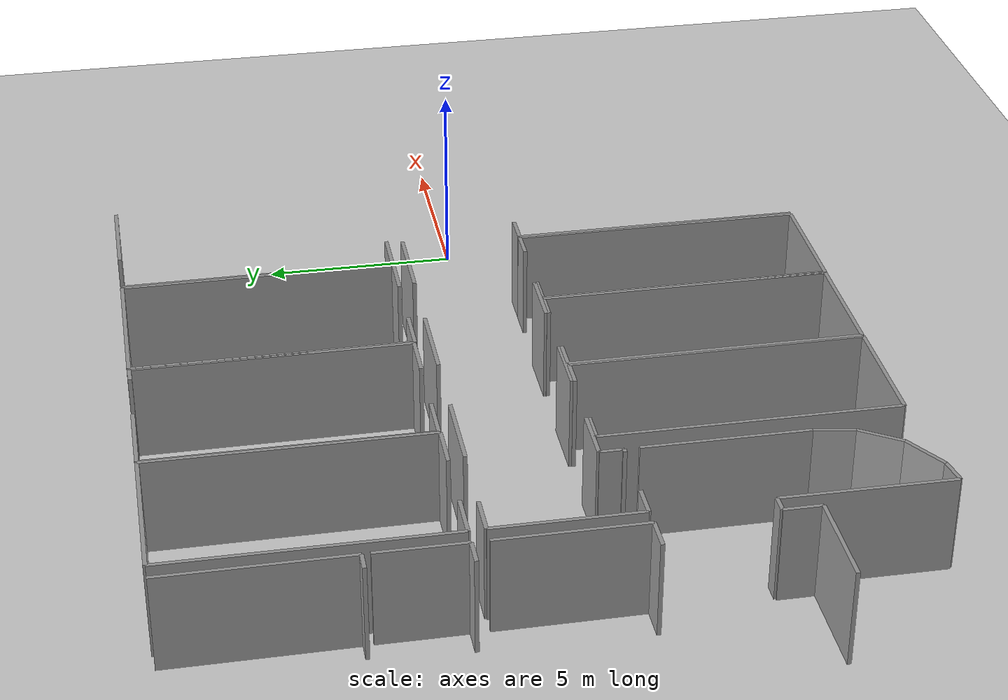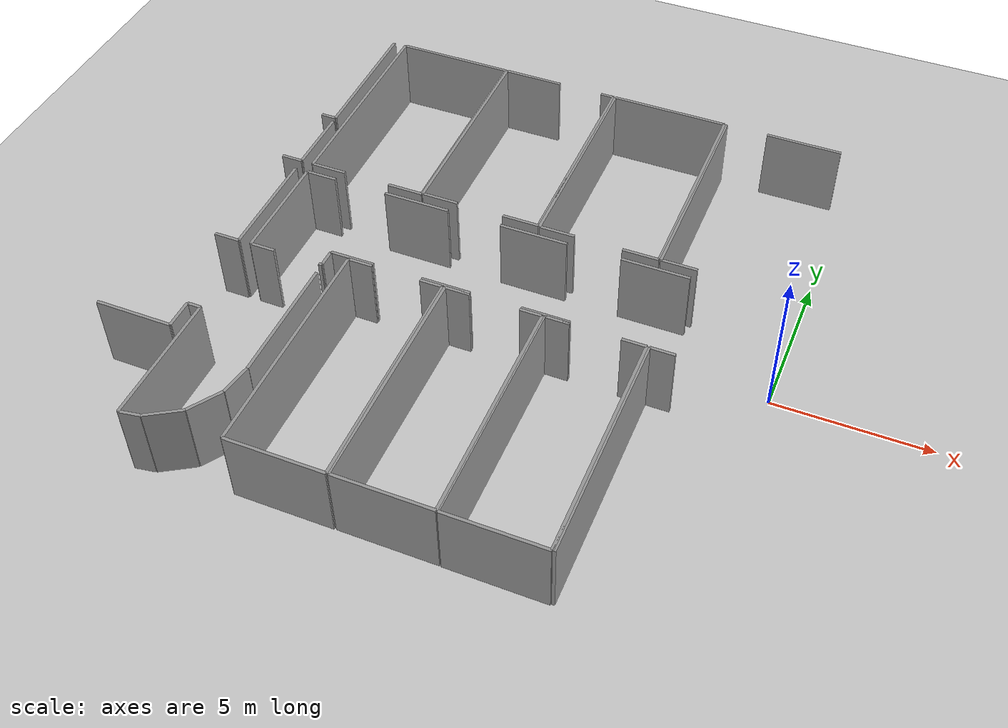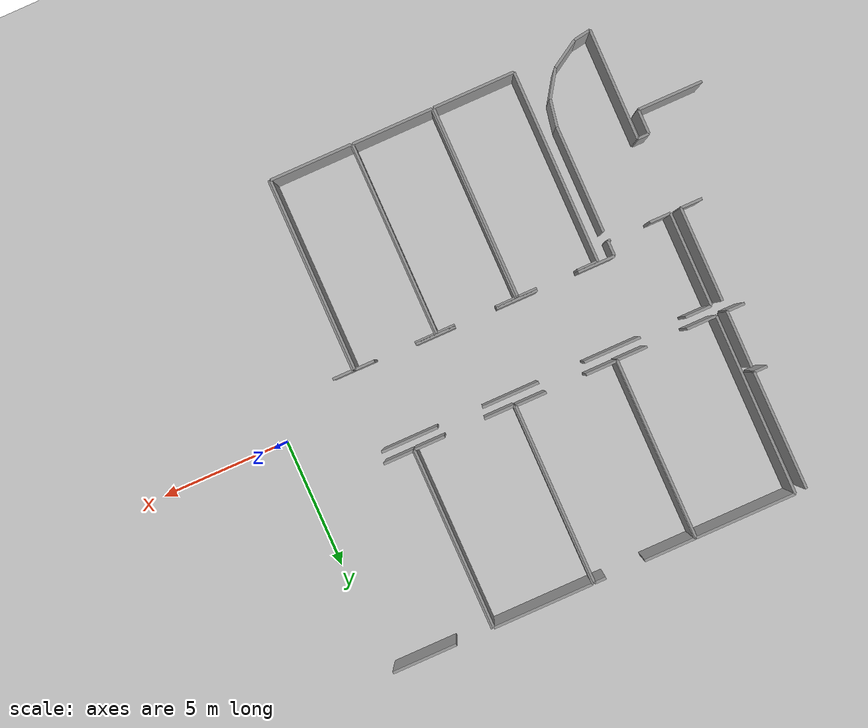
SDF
<sdf version="1.6">
 <world name="default">
  <model name="ground_plane">
   <static>1</static>
   <link name="link">
    <collision name="collision">
     <geometry><plane><normal>0 0 1</normal><size>100 100</size></plane></geometry>
     <surface><friction><ode><mu>100</mu><mu2>50</mu2></ode></friction></surface>
    </collision>
    <visual name="visual">
     <cast_shadows>0</cast_shadows>
     <geometry><plane><normal>0 0 1</normal><size>100 100</size></plane></geometry>
     <material>
      <script><uri>file://media/materials/scripts/gazebo.material</uri><name>Gazebo/Grey</name></script>
     </material>
    </visual>
   </link>
  </model>
  <model name="0510034839_A-40">
   <static>1</static>
   <link name="Wall_42">
    <collision name="Wall_42_Collision">
     <geometry><box><size>0.511336227689 0.1 2.5</size></box></geometry>
     <pose>0.255668113845 0 1.25 0 0 0</pose>
    </collision>
    <visual name="Wall_42_Visual">
     <pose>0.255668113845 0 1.25 0 0 0</pose>
     <geometry><box><size>0.511336227689 0.1 2.5</size></box></geometry>
     <material>
      <script><uri>file://media/materials/scripts/gazebo.material</uri><name>Gazebo/Grey</name></script>
      <ambient>1 1 1 1</ambient>
     </material>
    </visual>
    <pose>15.8651331658 -4.62436844644 0 0 0 3.14159265359</pose>
   </link>
   <link name="Wall_46">
    <collision name="Wall_46_Collision">
     <geometry><box><size>4.60104988891 0.1 2.5</size></box></geometry>
     <pose>2.30052494445 0 1.25 0 0 0</pose>
    </collision>
    <visual name="Wall_46_Visual">
     <pose>2.30052494445 0 1.25 0 0 0</pose>
     <geometry><box><size>4.60104988891 0.1 2.5</size></box></geometry>
     <material>
      <script><uri>file://media/materials/scripts/gazebo.material</uri><name>Gazebo/Grey</name></script>
      <ambient>1 1 1 1</ambient>
     </material>
    </visual>
    <pose>15.8460913499 -0.0233579607485 0 0 0 -1.56665773438</pose>
   </link>
   <link name="Wall_47">
    <collision name="Wall_47_Collision">
     <geometry><box><size>0.696676568411 0.1 2.5</size></box></geometry>
     <pose>0.348338284205 0 1.25 0 0 0</pose>
    </collision>
    <visual name="Wall_47_Visual">
     <pose>0.348338284205 0 1.25 0 0 0</pose>
     <geometry><box><size>0.696676568411 0.1 2.5</size></box></geometry>
     <material>
      <script><uri>file://media/materials/scripts/gazebo.material</uri><name>Gazebo/Grey</name></script>
      <ambient>1 1 1 1</ambient>
     </material>
    </visual>
    <pose>15.8713534923 -7.02059055018 0 0 0 3.14159265359</pose>
   </link>
   <link name="Wall_53">
    <collision name="Wall_53_Collision">
     <geometry><box><size>2.19907636483 0.1 2.5</size></box></geometry>
     <pose>1.09953818242 0 1.25 0 0 0</pose>
    </collision>
    <visual name="Wall_53_Visual">
     <pose>1.09953818242 0 1.25 0 0 0</pose>
     <geometry><box><size>2.19907636483 0.1 2.5</size></box></geometry>
     <material>
      <script><uri>file://media/materials/scripts/gazebo.material</uri><name>Gazebo/Grey</name></script>
      <ambient>1 1 1 1</ambient>
     </material>
    </visual>
    <pose>15.8728768375 -4.82151471298 0 0 0 -1.57148904734</pose>
   </link>
   <link name="Wall_54">
    <collision name="Wall_54_Collision">
     <geometry><box><size>0.83149262447 0.1 2.5</size></box></geometry>
     <pose>0.415746312235 0 1.25 0 0 0</pose>
    </collision>
    <visual name="Wall_54_Visual">
     <pose>0.415746312235 0 1.25 0 0 0</pose>
     <geometry><box><size>0.83149262447 0.1 2.5</size></box></geometry>
     <material>
      <script><uri>file://media/materials/scripts/gazebo.material</uri><name>Gazebo/Grey</name></script>
      <ambient>1 1 1 1</ambient>
     </material>
    </visual>
    <pose>15.8823977454 -11.0895727017 0 0 0 3.14159265359</pose>
   </link>
   <link name="Wall_61">
    <collision name="Wall_61_Collision">
     <geometry><box><size>3.66264152518 0.1 2.5</size></box></geometry>
     <pose>1.83132076259 0 1.25 0 0 0</pose>
    </collision>
    <visual name="Wall_61_Visual">
     <pose>1.83132076259 0 1.25 0 0 0</pose>
     <geometry><box><size>3.66264152518 0.1 2.5</size></box></geometry>
     <material>
      <script><uri>file://media/materials/scripts/gazebo.material</uri><name>Gazebo/Grey</name></script>
      <ambient>1 1 1 1</ambient>
     </material>
    </visual>
    <pose>15.8731307284 -7.42694289994 0 0 0 -1.56826617831</pose>
   </link>
   <link name="Wall_62">
    <collision name="Wall_62_Collision">
     <geometry><box><size>0.441516236322 0.1 2.5</size></box></geometry>
     <pose>0.220758118161 0 1.25 0 0 0</pose>
    </collision>
    <visual name="Wall_62_Visual">
     <pose>0.220758118161 0 1.25 0 0 0</pose>
     <geometry><box><size>0.441516236322 0.1 2.5</size></box></geometry>
     <material>
      <script><uri>file://media/materials/scripts/gazebo.material</uri><name>Gazebo/Grey</name></script>
      <ambient>1 1 1 1</ambient>
     </material>
    </visual>
    <pose>16.2909081677 -13.9971310331 0 0 0 3.14159265359</pose>
   </link>
   <link name="Wall_63">
    <collision name="Wall_63_Collision">
     <geometry><box><size>0.949297991723 0.1 2.5</size></box></geometry>
     <pose>0.474648995862 0 1.25 0 0 0</pose>
    </collision>
    <visual name="Wall_63_Visual">
     <pose>0.474648995862 0 1.25 0 0 0</pose>
     <geometry><box><size>0.949297991723 0.1 2.5</size></box></geometry>
     <material>
      <script><uri>file://media/materials/scripts/gazebo.material</uri><name>Gazebo/Grey</name></script>
      <ambient>1 1 1 1</ambient>
     </material>
    </visual>
    <pose>15.8493919313 -13.9971310331 0 0 0 -1.57079632679</pose>
   </link>
   <link name="Wall_64">
    <collision name="Wall_64_Collision">
     <geometry><box><size>2.50590296291 0.1 2.5</size></box></geometry>
     <pose>1.25295148145 0 1.25 0 0 0</pose>
    </collision>
    <visual name="Wall_64_Visual">
     <pose>1.25295148145 0 1.25 0 0 0</pose>
     <geometry><box><size>2.50590296291 0.1 2.5</size></box></geometry>
     <material>
      <script><uri>file://media/materials/scripts/gazebo.material</uri><name>Gazebo/Grey</name></script>
      <ambient>1 1 1 1</ambient>
     </material>
    </visual>
    <pose>15.8493919313 -14.9464290248 0 0 0 3.14159265359</pose>
   </link>
   <link name="Wall_70">
    <collision name="Wall_70_Collision">
     <geometry><box><size>4.13385127072 0.1 2.5</size></box></geometry>
     <pose>2.06692563536 0 1.25 0 0 0</pose>
    </collision>
    <visual name="Wall_70_Visual">
     <pose>2.06692563536 0 1.25 0 0 0</pose>
     <geometry><box><size>4.13385127072 0.1 2.5</size></box></geometry>
     <material>
      <script><uri>file://media/materials/scripts/gazebo.material</uri><name>Gazebo/Grey</name></script>
      <ambient>1 1 1 1</ambient>
     </material>
    </visual>
    <pose>18.780435169 -11.4351181862 0 0 0 -1.57079632679</pose>
   </link>
   <link name="Wall_71">
    <collision name="Wall_71_Collision">
     <geometry><box><size>1.01828139375 0.1 2.5</size></box></geometry>
     <pose>0.509140696876 0 1.25 0 0 0</pose>
    </collision>
    <visual name="Wall_71_Visual">
     <pose>0.509140696876 0 1.25 0 0 0</pose>
     <geometry><box><size>1.01828139375 0.1 2.5</size></box></geometry>
     <material>
      <script><uri>file://media/materials/scripts/gazebo.material</uri><name>Gazebo/Grey</name></script>
      <ambient>1 1 1 1</ambient>
     </material>
    </visual>
    <pose>18.780435169 -15.5689694569 0 0 0 -1.75205478987</pose>
   </link>
   <link name="Wall_72">
    <collision name="Wall_72_Collision">
     <geometry><box><size>1.15751088469 0.1 2.5</size></box></geometry>
     <pose>0.578755442347 0 1.25 0 0 0</pose>
    </collision>
    <visual name="Wall_72_Visual">
     <pose>0.578755442347 0 1.25 0 0 0</pose>
     <geometry><box><size>1.15751088469 0.1 2.5</size></box></geometry>
     <material>
      <script><uri>file://media/materials/scripts/gazebo.material</uri><name>Gazebo/Grey</name></script>
      <ambient>1 1 1 1</ambient>
     </material>
    </visual>
    <pose>18.5968720644 -16.5705689695 0 0 0 -2.150799101</pose>
   </link>
   <link name="Wall_73">
    <collision name="Wall_73_Collision">
     <geometry><box><size>1.2025057377 0.1 2.5</size></box></geometry>
     <pose>0.601252868848 0 1.25 0 0 0</pose>
    </collision>
    <visual name="Wall_73_Visual">
     <pose>0.601252868848 0 1.25 0 0 0</pose>
     <geometry><box><size>1.2025057377 0.1 2.5</size></box></geometry>
     <material>
      <script><uri>file://media/materials/scripts/gazebo.material</uri><name>Gazebo/Grey</name></script>
      <ambient>1 1 1 1</ambient>
     </material>
    </visual>
    <pose>17.9625257065 -17.5387818316 0 0 0 -2.59409417031</pose>
   </link>
   <link name="Wall_74">
    <collision name="Wall_74_Collision">
     <geometry><box><size>0.668228310078 0.1 2.5</size></box></geometry>
     <pose>0.334114155039 0 1.25 0 0 0</pose>
    </collision>
    <visual name="Wall_74_Visual">
     <pose>0.334114155039 0 1.25 0 0 0</pose>
     <geometry><box><size>0.668228310078 0.1 2.5</size></box></geometry>
     <material>
      <script><uri>file://media/materials/scripts/gazebo.material</uri><name>Gazebo/Grey</name></script>
      <ambient>1 1 1 1</ambient>
     </material>
    </visual>
    <pose>16.935790997 -18.1647497905 0 0 0 -2.97844278672</pose>
   </link>
   <link name="Wall_75">
    <collision name="Wall_75_Collision">
     <geometry><box><size>4.276181596 0.1 2.5</size></box></geometry>
     <pose>2.138090798 0 1.25 0 0 0</pose>
    </collision>
    <visual name="Wall_75_Visual">
     <pose>2.138090798 0 1.25 0 0 0</pose>
     <geometry><box><size>4.276181596 0.1 2.5</size></box></geometry>
     <material>
      <script><uri>file://media/materials/scripts/gazebo.material</uri><name>Gazebo/Grey</name></script>
      <ambient>1 1 1 1</ambient>
     </material>
    </visual>
    <pose>16.2764363876 -18.2732881408 0 0 0 1.56741204403</pose>
   </link>
   <link name="Wall_85">
    <collision name="Wall_85_Collision">
     <geometry><box><size>1.56054027979 0.1 2.5</size></box></geometry>
     <pose>0.780270139894 0 1.25 0 0 0</pose>
    </collision>
    <visual name="Wall_85_Visual">
     <pose>0.780270139894 0 1.25 0 0 0</pose>
     <geometry><box><size>1.56054027979 0.1 2.5</size></box></geometry>
     <material>
      <script><uri>file://media/materials/scripts/gazebo.material</uri><name>Gazebo/Grey</name></script>
      <ambient>1 1 1 1</ambient>
     </material>
    </visual>
    <pose>26.6011628202 -10.4773148501 0 0 0 3.14159265359</pose>
   </link>
   <link name="Wall_86">
    <collision name="Wall_86_Collision">
     <geometry><box><size>1.60408256531 0.1 2.5</size></box></geometry>
     <pose>0.802041282657 0 1.25 0 0 0</pose>
    </collision>
    <visual name="Wall_86_Visual">
     <pose>0.802041282657 0 1.25 0 0 0</pose>
     <geometry><box><size>1.60408256531 0.1 2.5</size></box></geometry>
     <material>
      <script><uri>file://media/materials/scripts/gazebo.material</uri><name>Gazebo/Grey</name></script>
      <ambient>1 1 1 1</ambient>
     </material>
    </visual>
    <pose>23.4148323051 -10.4773148501 0 0 0 3.14159265359</pose>
   </link>
   <link name="Wall_87">
    <collision name="Wall_87_Collision">
     <geometry><box><size>1.43892654937 0.1 2.5</size></box></geometry>
     <pose>0.719463274685 0 1.25 0 0 0</pose>
    </collision>
    <visual name="Wall_87_Visual">
     <pose>0.719463274685 0 1.25 0 0 0</pose>
     <geometry><box><size>1.43892654937 0.1 2.5</size></box></geometry>
     <material>
      <script><uri>file://media/materials/scripts/gazebo.material</uri><name>Gazebo/Grey</name></script>
      <ambient>1 1 1 1</ambient>
     </material>
    </visual>
    <pose>20.2073019016 -10.4773148501 0 0 0 3.14159265359</pose>
   </link>
   <link name="Wall_88">
    <collision name="Wall_88_Collision">
     <geometry><box><size>0.593850762942 0.1 2.5</size></box></geometry>
     <pose>0.296925381471 0 1.25 0 0 0</pose>
    </collision>
    <visual name="Wall_88_Visual">
     <pose>0.296925381471 0 1.25 0 0 0</pose>
     <geometry><box><size>0.593850762942 0.1 2.5</size></box></geometry>
     <material>
      <script><uri>file://media/materials/scripts/gazebo.material</uri><name>Gazebo/Grey</name></script>
      <ambient>1 1 1 1</ambient>
     </material>
    </visual>
    <pose>18.7683753523 -10.4773148501 0 0 0 -1.57079632679</pose>
   </link>
   <link name="Wall_89">
    <collision name="Wall_89_Collision">
     <geometry><box><size>0.105110823368 0.1 2.5</size></box></geometry>
     <pose>0.0525554116841 0 1.25 0 0 0</pose>
    </collision>
    <visual name="Wall_89_Visual">
     <pose>0.0525554116841 0 1.25 0 0 0</pose>
     <geometry><box><size>0.105110823368 0.1 2.5</size></box></geometry>
     <material>
      <script><uri>file://media/materials/scripts/gazebo.material</uri><name>Gazebo/Grey</name></script>
      <ambient>1 1 1 1</ambient>
     </material>
    </visual>
    <pose>18.7683753523 -11.071165613 0 0 0 3.14159265359</pose>
   </link>
   <link name="Wall_90">
    <collision name="Wall_90_Collision">
     <geometry><box><size>0.816132226369 0.1 2.5</size></box></geometry>
     <pose>0.408066113185 0 1.25 0 0 0</pose>
    </collision>
    <visual name="Wall_90_Visual">
     <pose>0.408066113185 0 1.25 0 0 0</pose>
     <geometry><box><size>0.816132226369 0.1 2.5</size></box></geometry>
     <material>
      <script><uri>file://media/materials/scripts/gazebo.material</uri><name>Gazebo/Grey</name></script>
      <ambient>1 1 1 1</ambient>
     </material>
    </visual>
    <pose>17.1187193744 -11.071165613 0 0 0 3.14159265359</pose>
   </link>
   <link name="Wall_91">
    <collision name="Wall_91_Collision">
     <geometry><box><size>3.64447660396 0.1 2.5</size></box></geometry>
     <pose>1.82223830198 0 1.25 0 0 0</pose>
    </collision>
    <visual name="Wall_91_Visual">
     <pose>1.82223830198 0 1.25 0 0 0</pose>
     <geometry><box><size>3.64447660396 0.1 2.5</size></box></geometry>
     <material>
      <script><uri>file://media/materials/scripts/gazebo.material</uri><name>Gazebo/Grey</name></script>
      <ambient>1 1 1 1</ambient>
     </material>
    </visual>
    <pose>16.302587148 -11.071165613 0 0 0 1.57079632679</pose>
   </link>
   <link name="Wall_92">
    <collision name="Wall_92_Collision">
     <geometry><box><size>1.02673470942 0.1 2.5</size></box></geometry>
     <pose>0.513367354711 0 1.25 0 0 0</pose>
    </collision>
    <visual name="Wall_92_Visual">
     <pose>0.513367354711 0 1.25 0 0 0</pose>
     <geometry><box><size>1.02673470942 0.1 2.5</size></box></geometry>
     <material>
      <script><uri>file://media/materials/scripts/gazebo.material</uri><name>Gazebo/Grey</name></script>
      <ambient>1 1 1 1</ambient>
     </material>
    </visual>
    <pose>16.302587148 -7.42668900906 0 0 0 0.0</pose>
   </link>
   <link name="Wall_93">
    <collision name="Wall_93_Collision">
     <geometry><box><size>2.20415365476 0.1 2.5</size></box></geometry>
     <pose>1.10207682738 0 1.25 0 0 0</pose>
    </collision>
    <visual name="Wall_93_Visual">
     <pose>1.10207682738 0 1.25 0 0 0</pose>
     <geometry><box><size>2.20415365476 0.1 2.5</size></box></geometry>
     <material>
      <script><uri>file://media/materials/scripts/gazebo.material</uri><name>Gazebo/Grey</name></script>
      <ambient>1 1 1 1</ambient>
     </material>
    </visual>
    <pose>19.1077005103 -7.42668900906 0 0 0 0.0</pose>
   </link>
   <link name="Wall_94">
    <collision name="Wall_94_Collision">
     <geometry><box><size>2.22027572549 0.1 2.5</size></box></geometry>
     <pose>1.11013786275 0 1.25 0 0 0</pose>
    </collision>
    <visual name="Wall_94_Visual">
     <pose>1.11013786275 0 1.25 0 0 0</pose>
     <geometry><box><size>2.22027572549 0.1 2.5</size></box></geometry>
     <material>
      <script><uri>file://media/materials/scripts/gazebo.material</uri><name>Gazebo/Grey</name></script>
      <ambient>1 1 1 1</ambient>
     </material>
    </visual>
    <pose>23.1041968162 -7.42668900906 0 0 0 0.0</pose>
   </link>
   <link name="Wall_95">
    <collision name="Wall_95_Collision">
     <geometry><box><size>2.20351892756 0.1 2.5</size></box></geometry>
     <pose>1.10175946378 0 1.25 0 0 0</pose>
    </collision>
    <visual name="Wall_95_Visual">
     <pose>1.10175946378 0 1.25 0 0 0</pose>
     <geometry><box><size>2.20351892756 0.1 2.5</size></box></geometry>
     <material>
      <script><uri>file://media/materials/scripts/gazebo.material</uri><name>Gazebo/Grey</name></script>
      <ambient>1 1 1 1</ambient>
     </material>
    </visual>
    <pose>27.0939650138 -7.42668900906 0 0 0 0.0</pose>
   </link>
   <link name="Wall_102">
    <collision name="Wall_102_Collision">
     <geometry><box><size>1.18071952675 0.1 2.5</size></box></geometry>
     <pose>0.590359763374 0 1.25 0 0 0</pose>
    </collision>
    <visual name="Wall_102_Visual">
     <pose>0.590359763374 0 1.25 0 0 0</pose>
     <geometry><box><size>1.18071952675 0.1 2.5</size></box></geometry>
     <material>
      <script><uri>file://media/materials/scripts/gazebo.material</uri><name>Gazebo/Grey</name></script>
      <ambient>1 1 1 1</ambient>
     </material>
    </visual>
    <pose>20.2019701932 -7.01970193211 0 0 0 3.14159265359</pose>
   </link>
   <link name="Wall_103">
    <collision name="Wall_103_Collision">
     <geometry><box><size>1.17107167339 0.1 2.5</size></box></geometry>
     <pose>0.585535836697 0 1.25 0 0 0</pose>
    </collision>
    <visual name="Wall_103_Visual">
     <pose>0.585535836697 0 1.25 0 0 0</pose>
     <geometry><box><size>1.17107167339 0.1 2.5</size></box></geometry>
     <material>
      <script><uri>file://media/materials/scripts/gazebo.material</uri><name>Gazebo/Grey</name></script>
      <ambient>1 1 1 1</ambient>
     </material>
    </visual>
    <pose>17.4566481326 -7.01970193211 0 0 0 3.14159265359</pose>
   </link>
   <link name="Wall_104">
    <collision name="Wall_104_Collision">
     <geometry><box><size>7.0010409526 0.1 2.5</size></box></geometry>
     <pose>3.5005204763 0 1.25 0 0 0</pose>
    </collision>
    <visual name="Wall_104_Visual">
     <pose>3.5005204763 0 1.25 0 0 0</pose>
     <geometry><box><size>7.0010409526 0.1 2.5</size></box></geometry>
     <material>
      <script><uri>file://media/materials/scripts/gazebo.material</uri><name>Gazebo/Grey</name></script>
      <ambient>1 1 1 1</ambient>
     </material>
    </visual>
    <pose>16.2855764592 -7.01970193211 0 0 0 1.57079632679</pose>
   </link>
   <link name="Wall_105">
    <collision name="Wall_105_Collision">
     <geometry><box><size>3.90915784396 0.1 2.5</size></box></geometry>
     <pose>1.95457892198 0 1.25 0 0 0</pose>
    </collision>
    <visual name="Wall_105_Visual">
     <pose>1.95457892198 0 1.25 0 0 0</pose>
     <geometry><box><size>3.90915784396 0.1 2.5</size></box></geometry>
     <material>
      <script><uri>file://media/materials/scripts/gazebo.material</uri><name>Gazebo/Grey</name></script>
      <ambient>1 1 1 1</ambient>
     </material>
    </visual>
    <pose>16.2855764592 -0.018660979511 0 0 0 0.0</pose>
   </link>
   <link name="Wall_106">
    <collision name="Wall_106_Collision">
     <geometry><box><size>7.00104469191 0.1 2.5</size></box></geometry>
     <pose>3.50052234595 0 1.25 0 0 0</pose>
    </collision>
    <visual name="Wall_106_Visual">
     <pose>3.50052234595 0 1.25 0 0 0</pose>
     <geometry><box><size>7.00104469191 0.1 2.5</size></box></geometry>
     <material>
      <script><uri>file://media/materials/scripts/gazebo.material</uri><name>Gazebo/Grey</name></script>
      <ambient>1 1 1 1</ambient>
     </material>
    </visual>
    <pose>20.1947343032 -0.018660979511 0 0 0 -1.56976278229</pose>
   </link>
   <link name="Wall_107">
    <collision name="Wall_107_Collision">
     <geometry><box><size>1.20141163328 0.1 2.5</size></box></geometry>
     <pose>0.60070581664 0 1.25 0 0 0</pose>
    </collision>
    <visual name="Wall_107_Visual">
     <pose>0.60070581664 0 1.25 0 0 0</pose>
     <geometry><box><size>1.20141163328 0.1 2.5</size></box></geometry>
     <material>
      <script><uri>file://media/materials/scripts/gazebo.material</uri><name>Gazebo/Grey</name></script>
      <ambient>1 1 1 1</ambient>
     </material>
    </visual>
    <pose>24.2046868256 -6.99088531749 0 0 0 3.14159265359</pose>
   </link>
   <link name="Wall_108">
    <collision name="Wall_108_Collision">
     <geometry><box><size>1.20191941504 0.1 2.5</size></box></geometry>
     <pose>0.600959707518 0 1.25 0 0 0</pose>
    </collision>
    <visual name="Wall_108_Visual">
     <pose>0.600959707518 0 1.25 0 0 0</pose>
     <geometry><box><size>1.20191941504 0.1 2.5</size></box></geometry>
     <material>
      <script><uri>file://media/materials/scripts/gazebo.material</uri><name>Gazebo/Grey</name></script>
      <ambient>1 1 1 1</ambient>
     </material>
    </visual>
    <pose>21.4347373499 -6.99088531749 0 0 0 3.14159265359</pose>
   </link>
   <link name="Wall_109">
    <collision name="Wall_109_Collision">
     <geometry><box><size>6.97374768325 0.1 2.5</size></box></geometry>
     <pose>3.48687384162 0 1.25 0 0 0</pose>
    </collision>
    <visual name="Wall_109_Visual">
     <pose>3.48687384162 0 1.25 0 0 0</pose>
     <geometry><box><size>6.97374768325 0.1 2.5</size></box></geometry>
     <material>
      <script><uri>file://media/materials/scripts/gazebo.material</uri><name>Gazebo/Grey</name></script>
      <ambient>1 1 1 1</ambient>
     </material>
    </visual>
    <pose>20.2328179349 -6.99088531749 0 0 0 1.57079632679</pose>
   </link>
   <link name="Wall_110">
    <collision name="Wall_110_Collision">
     <geometry><box><size>1.98783862696 0.1 2.5</size></box></geometry>
     <pose>0.993919313479 0 1.25 0 0 0</pose>
    </collision>
    <visual name="Wall_110_Visual">
     <pose>0.993919313479 0 1.25 0 0 0</pose>
     <geometry><box><size>1.98783862696 0.1 2.5</size></box></geometry>
     <material>
      <script><uri>file://media/materials/scripts/gazebo.material</uri><name>Gazebo/Grey</name></script>
      <ambient>1 1 1 1</ambient>
     </material>
    </visual>
    <pose>20.2328179349 -0.0171376342448 0 0 0 0.0</pose>
   </link>
   <link name="Wall_111">
    <collision name="Wall_111_Collision">
     <geometry><box><size>0.448117399142 0.1 2.5</size></box></geometry>
     <pose>0.224058699571 0 1.25 0 0 0</pose>
    </collision>
    <visual name="Wall_111_Visual">
     <pose>0.224058699571 0 1.25 0 0 0</pose>
     <geometry><box><size>0.448117399142 0.1 2.5</size></box></geometry>
     <material>
      <script><uri>file://media/materials/scripts/gazebo.material</uri><name>Gazebo/Grey</name></script>
      <ambient>1 1 1 1</ambient>
     </material>
    </visual>
    <pose>23.7480640821 -0.0171376342448 0 0 0 0.0</pose>
   </link>
   <link name="Wall_112">
    <collision name="Wall_112_Collision">
     <geometry><box><size>6.9737528699 0.1 2.5</size></box></geometry>
     <pose>3.48687643495 0 1.25 0 0 0</pose>
    </collision>
    <visual name="Wall_112_Visual">
     <pose>3.48687643495 0 1.25 0 0 0</pose>
     <geometry><box><size>6.9737528699 0.1 2.5</size></box></geometry>
     <material>
      <script><uri>file://media/materials/scripts/gazebo.material</uri><name>Gazebo/Grey</name></script>
      <ambient>1 1 1 1</ambient>
     </material>
    </visual>
    <pose>24.1961814812 -0.0171376342448 0 0 0 -1.56957670421</pose>
   </link>
   <link name="Wall_113">
    <collision name="Wall_113_Collision">
     <geometry><box><size>1.18833625308 0.1 2.5</size></box></geometry>
     <pose>0.594168126539 0 1.25 0 0 0</pose>
    </collision>
    <visual name="Wall_113_Visual">
     <pose>0.594168126539 0 1.25 0 0 0</pose>
     <geometry><box><size>1.18833625308 0.1 2.5</size></box></geometry>
     <material>
      <script><uri>file://media/materials/scripts/gazebo.material</uri><name>Gazebo/Grey</name></script>
      <ambient>1 1 1 1</ambient>
     </material>
    </visual>
    <pose>28.1790946251 -7.02173305913 0 0 0 3.14159265359</pose>
   </link>
   <link name="Wall_114">
    <collision name="Wall_114_Collision">
     <geometry><box><size>1.16853276462 0.1 2.5</size></box></geometry>
     <pose>0.584266382309 0 1.25 0 0 0</pose>
    </collision>
    <visual name="Wall_114_Visual">
     <pose>0.584266382309 0 1.25 0 0 0</pose>
     <geometry><box><size>1.16853276462 0.1 2.5</size></box></geometry>
     <material>
      <script><uri>file://media/materials/scripts/gazebo.material</uri><name>Gazebo/Grey</name></script>
      <ambient>1 1 1 1</ambient>
     </material>
    </visual>
    <pose>25.4252672201 -7.02173305913 0 0 0 3.14159265359</pose>
   </link>
   <link name="Wall_115">
    <collision name="Wall_115_Collision">
     <geometry><box><size>7.01132353315 0.1 2.5</size></box></geometry>
     <pose>3.50566176657 0 1.25 0 0 0</pose>
    </collision>
    <visual name="Wall_115_Visual">
     <pose>3.50566176657 0 1.25 0 0 0</pose>
     <geometry><box><size>7.01132353315 0.1 2.5</size></box></geometry>
     <material>
      <script><uri>file://media/materials/scripts/gazebo.material</uri><name>Gazebo/Grey</name></script>
      <ambient>1 1 1 1</ambient>
     </material>
    </visual>
    <pose>24.2567344555 -7.02173305913 0 0 0 1.57079632679</pose>
   </link>
   <link name="Wall_116">
    <collision name="Wall_116_Collision">
     <geometry><box><size>3.90306446289 0.1 2.5</size></box></geometry>
     <pose>1.95153223145 0 1.25 0 0 0</pose>
    </collision>
    <visual name="Wall_116_Visual">
     <pose>1.95153223145 0 1.25 0 0 0</pose>
     <geometry><box><size>3.90306446289 0.1 2.5</size></box></geometry>
     <material>
      <script><uri>file://media/materials/scripts/gazebo.material</uri><name>Gazebo/Grey</name></script>
      <ambient>1 1 1 1</ambient>
     </material>
    </visual>
    <pose>24.2567344555 -0.0104095259857 0 0 0 0.0</pose>
   </link>
   <link name="Wall_117">
    <collision name="Wall_117_Collision">
     <geometry><box><size>7.01135008474 0.1 2.5</size></box></geometry>
     <pose>3.50567504237 0 1.25 0 0 0</pose>
    </collision>
    <visual name="Wall_117_Visual">
     <pose>3.50567504237 0 1.25 0 0 0</pose>
     <geometry><box><size>7.01135008474 0.1 2.5</size></box></geometry>
     <material>
      <script><uri>file://media/materials/scripts/gazebo.material</uri><name>Gazebo/Grey</name></script>
      <ambient>1 1 1 1</ambient>
     </material>
    </visual>
    <pose>28.1597989184 -0.0104095259857 0 0 0 -1.56804425611</pose>
   </link>
   <link name="Wall_119">
    <collision name="Wall_119_Collision">
     <geometry><box><size>1.16853276462 0.1 2.5</size></box></geometry>
     <pose>0.584266382309 0 1.25 0 0 0</pose>
    </collision>
    <visual name="Wall_119_Visual">
     <pose>0.584266382309 0 1.25 0 0 0</pose>
     <geometry><box><size>1.16853276462 0.1 2.5</size></box></geometry>
     <material>
      <script><uri>file://media/materials/scripts/gazebo.material</uri><name>Gazebo/Grey</name></script>
      <ambient>1 1 1 1</ambient>
     </material>
    </visual>
    <pose>29.3954858202 -7.009546297 0 0 0 3.14159265359</pose>
   </link>
   <link name="Wall_120">
    <collision name="Wall_120_Collision">
     <geometry><box><size>7.00357986138 0.1 2.5</size></box></geometry>
     <pose>3.50178993069 0 1.25 0 0 0</pose>
    </collision>
    <visual name="Wall_120_Visual">
     <pose>3.50178993069 0 1.25 0 0 0</pose>
     <geometry><box><size>7.00357986138 0.1 2.5</size></box></geometry>
     <material>
      <script><uri>file://media/materials/scripts/gazebo.material</uri><name>Gazebo/Grey</name></script>
      <ambient>1 1 1 1</ambient>
     </material>
    </visual>
    <pose>28.2269530556 -7.009546297 0 0 0 1.57079632679</pose>
   </link>
   <link name="Wall_121">
    <collision name="Wall_121_Collision">
     <geometry><box><size>2.50069819991 0.1 2.5</size></box></geometry>
     <pose>1.25034909996 0 1.25 0 0 0</pose>
    </collision>
    <visual name="Wall_121_Visual">
     <pose>1.25034909996 0 1.25 0 0 0</pose>
     <geometry><box><size>2.50069819991 0.1 2.5</size></box></geometry>
     <material>
      <script><uri>file://media/materials/scripts/gazebo.material</uri><name>Gazebo/Grey</name></script>
      <ambient>1 1 1 1</ambient>
     </material>
    </visual>
    <pose>29.6413791352 -0.00596643562597 0 0 0 0.0</pose>
   </link>
   <link name="Wall_144">
    <collision name="Wall_144_Collision">
     <geometry><box><size>3.16766953563 0.1 2.5</size></box></geometry>
     <pose>1.58383476782 0 1.25 0 0 0</pose>
    </collision>
    <visual name="Wall_144_Visual">
     <pose>1.58383476782 0 1.25 0 0 0</pose>
     <geometry><box><size>3.16766953563 0.1 2.5</size></box></geometry>
     <material>
      <script><uri>file://media/materials/scripts/gazebo.material</uri><name>Gazebo/Grey</name></script>
      <ambient>1 1 1 1</ambient>
     </material>
    </visual>
    <pose>22.5632823013 -18.0007362835 0 0 0 3.14159265359</pose>
   </link>
   <link name="Wall_145">
    <collision name="Wall_145_Collision">
     <geometry><box><size>7.44992002437 0.1 2.5</size></box></geometry>
     <pose>3.72496001219 0 1.25 0 0 0</pose>
    </collision>
    <visual name="Wall_145_Visual">
     <pose>3.72496001219 0 1.25 0 0 0</pose>
     <geometry><box><size>7.44992002437 0.1 2.5</size></box></geometry>
     <material>
      <script><uri>file://media/materials/scripts/gazebo.material</uri><name>Gazebo/Grey</name></script>
      <ambient>1 1 1 1</ambient>
     </material>
    </visual>
    <pose>19.3956127656 -18.0007362835 0 0 0 1.57079632679</pose>
   </link>
   <link name="Wall_146">
    <collision name="Wall_146_Collision">
     <geometry><box><size>0.805468809506 0.1 2.5</size></box></geometry>
     <pose>0.402734404753 0 1.25 0 0 0</pose>
    </collision>
    <visual name="Wall_146_Visual">
     <pose>0.402734404753 0 1.25 0 0 0</pose>
     <geometry><box><size>0.805468809506 0.1 2.5</size></box></geometry>
     <material>
      <script><uri>file://media/materials/scripts/gazebo.material</uri><name>Gazebo/Grey</name></script>
      <ambient>1 1 1 1</ambient>
     </material>
    </visual>
    <pose>19.3956127656 -10.5508162592 0 0 0 0.0</pose>
   </link>
   <link name="Wall_147">
    <collision name="Wall_147_Collision">
     <geometry><box><size>0.74643918044 0.1 2.5</size></box></geometry>
     <pose>0.37321959022 0 1.25 0 0 0</pose>
    </collision>
    <visual name="Wall_147_Visual">
     <pose>0.37321959022 0 1.25 0 0 0</pose>
     <geometry><box><size>0.74643918044 0.1 2.5</size></box></geometry>
     <material>
      <script><uri>file://media/materials/scripts/gazebo.material</uri><name>Gazebo/Grey</name></script>
      <ambient>1 1 1 1</ambient>
     </material>
    </visual>
    <pose>21.8044024678 -10.5508162592 0 0 0 0.0</pose>
   </link>
   <link name="Wall_148">
    <collision name="Wall_148_Collision">
     <geometry><box><size>7.44993041172 0.1 2.5</size></box></geometry>
     <pose>3.72496520586 0 1.25 0 0 0</pose>
    </collision>
    <visual name="Wall_148_Visual">
     <pose>3.72496520586 0 1.25 0 0 0</pose>
     <geometry><box><size>7.44993041172 0.1 2.5</size></box></geometry>
     <material>
      <script><uri>file://media/materials/scripts/gazebo.material</uri><name>Gazebo/Grey</name></script>
      <ambient>1 1 1 1</ambient>
     </material>
    </visual>
    <pose>22.5508416483 -10.5508162592 0 0 0 -1.56912642411</pose>
   </link>
   <link name="Wall_149">
    <collision name="Wall_149_Collision">
     <geometry><box><size>3.13542539417 0.1 2.5</size></box></geometry>
     <pose>1.56771269708 0 1.25 0 0 0</pose>
    </collision>
    <visual name="Wall_149_Visual">
     <pose>1.56771269708 0 1.25 0 0 0</pose>
     <geometry><box><size>3.13542539417 0.1 2.5</size></box></geometry>
     <material>
      <script><uri>file://media/materials/scripts/gazebo.material</uri><name>Gazebo/Grey</name></script>
      <ambient>1 1 1 1</ambient>
     </material>
    </visual>
    <pose>25.7591337243 -17.9895650849 0 0 0 3.14159265359</pose>
   </link>
   <link name="Wall_150">
    <collision name="Wall_150_Collision">
     <geometry><box><size>7.44496915226 0.1 2.5</size></box></geometry>
     <pose>3.72248457613 0 1.25 0 0 0</pose>
    </collision>
    <visual name="Wall_150_Visual">
     <pose>3.72248457613 0 1.25 0 0 0</pose>
     <geometry><box><size>7.44496915226 0.1 2.5</size></box></geometry>
     <material>
      <script><uri>file://media/materials/scripts/gazebo.material</uri><name>Gazebo/Grey</name></script>
      <ambient>1 1 1 1</ambient>
     </material>
    </visual>
    <pose>22.6237083302 -17.9895650849 0 0 0 1.57079632679</pose>
   </link>
   <link name="Wall_151">
    <collision name="Wall_151_Collision">
     <geometry><box><size>0.79620179247 0.1 2.5</size></box></geometry>
     <pose>0.398100896235 0 1.25 0 0 0</pose>
    </collision>
    <visual name="Wall_151_Visual">
     <pose>0.398100896235 0 1.25 0 0 0</pose>
     <geometry><box><size>0.79620179247 0.1 2.5</size></box></geometry>
     <material>
      <script><uri>file://media/materials/scripts/gazebo.material</uri><name>Gazebo/Grey</name></script>
      <ambient>1 1 1 1</ambient>
     </material>
    </visual>
    <pose>22.6237083302 -10.5445959327 0 0 0 0.0</pose>
   </link>
   <link name="Wall_152">
    <collision name="Wall_152_Collision">
     <geometry><box><size>0.717876456699 0.1 2.5</size></box></geometry>
     <pose>0.358938228349 0 1.25 0 0 0</pose>
    </collision>
    <visual name="Wall_152_Visual">
     <pose>0.358938228349 0 1.25 0 0 0</pose>
     <geometry><box><size>0.717876456699 0.1 2.5</size></box></geometry>
     <material>
      <script><uri>file://media/materials/scripts/gazebo.material</uri><name>Gazebo/Grey</name></script>
      <ambient>1 1 1 1</ambient>
     </material>
    </visual>
    <pose>25.0322441415 -10.5445959327 0 0 0 0.0</pose>
   </link>
   <link name="Wall_153">
    <collision name="Wall_153_Collision">
     <geometry><box><size>7.44497460805 0.1 2.5</size></box></geometry>
     <pose>3.72248730403 0 1.25 0 0 0</pose>
    </collision>
    <visual name="Wall_153_Visual">
     <pose>3.72248730403 0 1.25 0 0 0</pose>
     <geometry><box><size>7.44497460805 0.1 2.5</size></box></geometry>
     <material>
      <script><uri>file://media/materials/scripts/gazebo.material</uri><name>Gazebo/Grey</name></script>
      <ambient>1 1 1 1</ambient>
     </material>
    </visual>
    <pose>25.7501205982 -10.5445959327 0 0 0 -1.56958569428</pose>
   </link>
   <link name="Wall_154">
    <collision name="Wall_154_Collision">
     <geometry><box><size>3.17503237109 0.1 2.5</size></box></geometry>
     <pose>1.58751618554 0 1.25 0 0 0</pose>
    </collision>
    <visual name="Wall_154_Visual">
     <pose>1.58751618554 0 1.25 0 0 0</pose>
     <geometry><box><size>3.17503237109 0.1 2.5</size></box></geometry>
     <material>
      <script><uri>file://media/materials/scripts/gazebo.material</uri><name>Gazebo/Grey</name></script>
      <ambient>1 1 1 1</ambient>
     </material>
    </visual>
    <pose>28.9803742352 -17.9978165385 0 0 0 3.14159265359</pose>
   </link>
   <link name="Wall_155">
    <collision name="Wall_155_Collision">
     <geometry><box><size>7.46121816843 0.1 2.5</size></box></geometry>
     <pose>3.73060908422 0 1.25 0 0 0</pose>
    </collision>
    <visual name="Wall_155_Visual">
     <pose>3.73060908422 0 1.25 0 0 0</pose>
     <geometry><box><size>7.46121816843 0.1 2.5</size></box></geometry>
     <material>
      <script><uri>file://media/materials/scripts/gazebo.material</uri><name>Gazebo/Grey</name></script>
      <ambient>1 1 1 1</ambient>
     </material>
    </visual>
    <pose>25.8053418641 -17.9978165385 0 0 0 1.57079632679</pose>
   </link>
   <link name="Wall_156">
    <collision name="Wall_156_Collision">
     <geometry><box><size>0.795694010714 0.1 2.5</size></box></geometry>
     <pose>0.397847005357 0 1.25 0 0 0</pose>
    </collision>
    <visual name="Wall_156_Visual">
     <pose>0.397847005357 0 1.25 0 0 0</pose>
     <geometry><box><size>0.795694010714 0.1 2.5</size></box></geometry>
     <material>
      <script><uri>file://media/materials/scripts/gazebo.material</uri><name>Gazebo/Grey</name></script>
      <ambient>1 1 1 1</ambient>
     </material>
    </visual>
    <pose>25.8053418641 -10.53659837 0 0 0 0.0</pose>
   </link>
   <link name="Wall_157">
    <collision name="Wall_157_Collision">
     <geometry><box><size>0.769924086628 0.1 2.5</size></box></geometry>
     <pose>0.384962043314 0 1.25 0 0 0</pose>
    </collision>
    <visual name="Wall_157_Visual">
     <pose>0.384962043314 0 1.25 0 0 0</pose>
     <geometry><box><size>0.769924086628 0.1 2.5</size></box></geometry>
     <material>
      <script><uri>file://media/materials/scripts/gazebo.material</uri><name>Gazebo/Grey</name></script>
      <ambient>1 1 1 1</ambient>
     </material>
    </visual>
    <pose>28.2039759311 -10.53659837 0 0 0 0.0</pose>
   </link>
   <link name="Wall_158">
    <collision name="Wall_158_Collision">
     <geometry><box><size>7.46122097732 0.1 2.5</size></box></geometry>
     <pose>3.73061048866 0 1.25 0 0 0</pose>
    </collision>
    <visual name="Wall_158_Visual">
     <pose>3.73061048866 0 1.25 0 0 0</pose>
     <geometry><box><size>7.46122097732 0.1 2.5</size></box></geometry>
     <material>
      <script><uri>file://media/materials/scripts/gazebo.material</uri><name>Gazebo/Grey</name></script>
      <ambient>1 1 1 1</ambient>
     </material>
    </visual>
    <pose>28.9739000178 -10.53659837 0 0 0 -1.56992861115</pose>
   </link>
   <link name="Wall_160">
    <collision name="Wall_160_Collision">
     <geometry><box><size>7.47023129459 0.1 2.5</size></box></geometry>
     <pose>3.73511564729 0 1.25 0 0 0</pose>
    </collision>
    <visual name="Wall_160_Visual">
     <pose>3.73511564729 0 1.25 0 0 0</pose>
     <geometry><box><size>7.47023129459 0.1 2.5</size></box></geometry>
     <material>
      <script><uri>file://media/materials/scripts/gazebo.material</uri><name>Gazebo/Grey</name></script>
      <ambient>1 1 1 1</ambient>
     </material>
    </visual>
    <pose>29.0447355727 -18.0103841369 0 0 0 1.57079632679</pose>
   </link>
   <link name="Wall_161">
    <collision name="Wall_161_Collision">
     <geometry><box><size>0.796963465103 0.1 2.5</size></box></geometry>
     <pose>0.398481732551 0 1.25 0 0 0</pose>
    </collision>
    <visual name="Wall_161_Visual">
     <pose>0.398481732551 0 1.25 0 0 0</pose>
     <geometry><box><size>0.796963465103 0.1 2.5</size></box></geometry>
     <material>
      <script><uri>file://media/materials/scripts/gazebo.material</uri><name>Gazebo/Grey</name></script>
      <ambient>1 1 1 1</ambient>
     </material>
    </visual>
    <pose>29.0447355727 -10.5401528423 0 0 0 0.0</pose>
   </link>
   <pose>-32.5 9.12912763094 0 0 0 0</pose>
  </model>
 </world>
</sdf>
